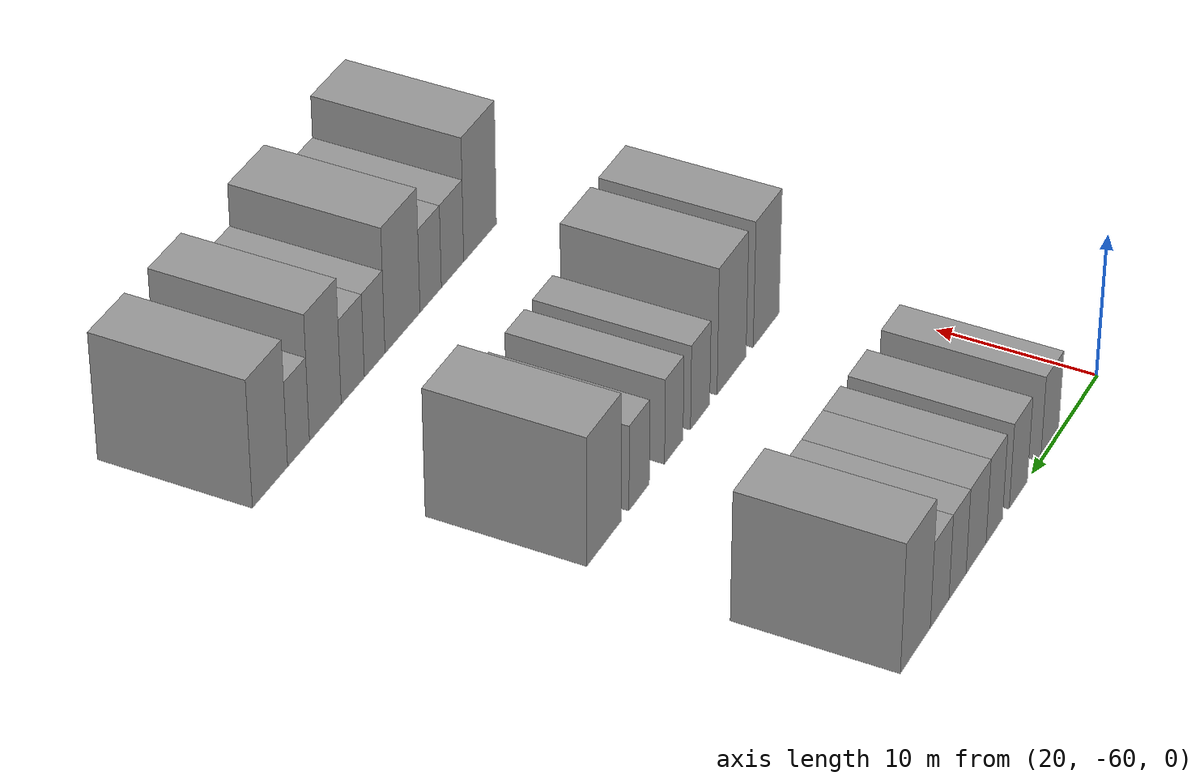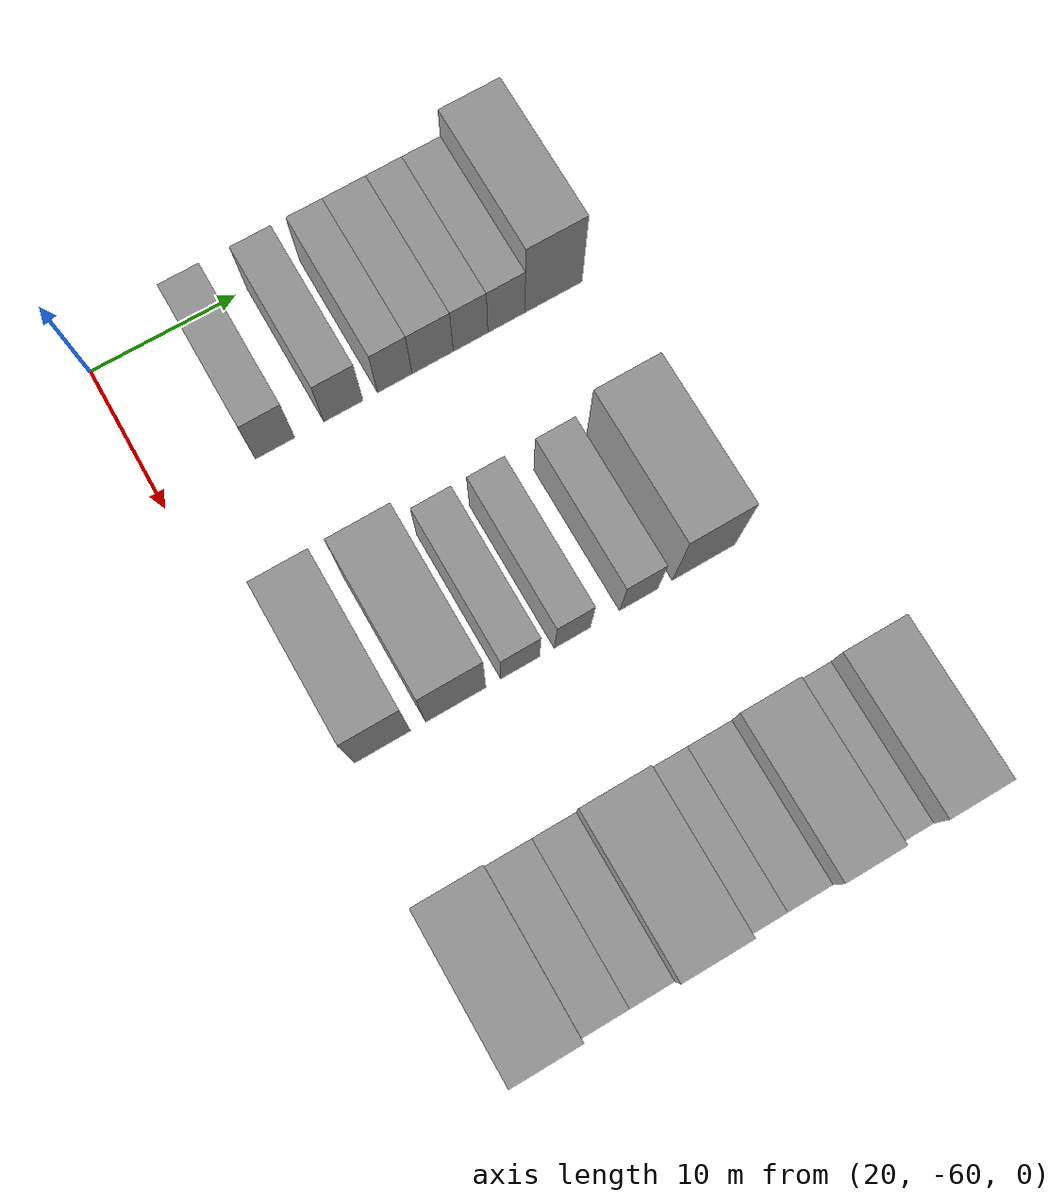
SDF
<sdf version="1.6">
 <world name="default">
  <model name="building_44">
   <static>1</static>
   <pose>25.0000 -52.5314 0 0.000000 0.000000 0.000000</pose>
   <link name="link">
    <pose>0 0 3.00 0 0 0</pose>
    <collision name="collision"><geometry><box><size>10.0000 2.6931 6.0000</size></box></geometry></collision>
    <visual name="visual">
     <cast_shadows>0</cast_shadows>
     <geometry><box><size>10.0000 2.6931 6.0000</size></box></geometry>
     <material>
      <script>
       <uri>model://grey_wall/materials/scripts</uri>
       <uri>model://grey_wall/materials/textures</uri>
       <name>vrc/grey_wall</name>
      </script>
     </material>
    </visual>
   </link>
  </model>
  <model name="building_45">
   <static>1</static>
   <pose>25.0000 -47.8277 0 0.000000 0.000000 0.000000</pose>
   <link name="link">
    <pose>0 0 3.00 0 0 0</pose>
    <collision name="collision"><geometry><box><size>10.0000 2.7142 6.0000</size></box></geometry></collision>
    <visual name="visual">
     <cast_shadows>0</cast_shadows>
     <geometry><box><size>10.0000 2.7142 6.0000</size></box></geometry>
     <material>
      <script>
       <uri>model://grey_wall/materials/scripts</uri>
       <uri>model://grey_wall/materials/textures</uri>
       <name>vrc/grey_wall</name>
      </script>
     </material>
    </visual>
   </link>
  </model>
  <model name="building_46">
   <static>1</static>
   <pose>25.0000 -44.2647 0 0.000000 0.000000 0.000000</pose>
   <link name="link">
    <pose>0 0 3.00 0 0 0</pose>
    <collision name="collision"><geometry><box><size>10.0000 2.4117 6.0000</size></box></geometry></collision>
    <visual name="visual">
     <cast_shadows>0</cast_shadows>
     <geometry><box><size>10.0000 2.4117 6.0000</size></box></geometry>
     <material>
      <script>
       <uri>model://grey_wall/materials/scripts</uri>
       <uri>model://grey_wall/materials/textures</uri>
       <name>vrc/grey_wall</name>
      </script>
     </material>
    </visual>
   </link>
  </model>
  <model name="building_47">
   <static>1</static>
   <pose>25.0000 -41.6088 0 0.000000 0.000000 0.000000</pose>
   <link name="link">
    <pose>0 0 3.00 0 0 0</pose>
    <collision name="collision"><geometry><box><size>10.0000 2.9002 6.0000</size></box></geometry></collision>
    <visual name="visual">
     <cast_shadows>0</cast_shadows>
     <geometry><box><size>10.0000 2.9002 6.0000</size></box></geometry>
     <material>
      <script>
       <uri>model://grey_wall/materials/scripts</uri>
       <uri>model://grey_wall/materials/textures</uri>
       <name>vrc/grey_wall</name>
      </script>
     </material>
    </visual>
   </link>
  </model>
  <model name="building_48">
   <static>1</static>
   <pose>25.0000 -38.9395 0 0.000000 0.000000 0.000000</pose>
   <link name="link">
    <pose>0 0 3.00 0 0 0</pose>
    <collision name="collision"><geometry><box><size>10.0000 2.4383 6.0000</size></box></geometry></collision>
    <visual name="visual">
     <cast_shadows>0</cast_shadows>
     <geometry><box><size>10.0000 2.4383 6.0000</size></box></geometry>
     <material>
      <script>
       <uri>model://grey_wall/materials/scripts</uri>
       <uri>model://grey_wall/materials/textures</uri>
       <name>vrc/grey_wall</name>
      </script>
     </material>
    </visual>
   </link>
  </model>
  <model name="building_49">
   <static>1</static>
   <pose>25.0000 -36.4089 0 0.000000 0.000000 0.000000</pose>
   <link name="link">
    <pose>0 0 3.00 0 0 0</pose>
    <collision name="collision"><geometry><box><size>10.0000 2.6229 6.0000</size></box></geometry></collision>
    <visual name="visual">
     <cast_shadows>0</cast_shadows>
     <geometry><box><size>10.0000 2.6229 6.0000</size></box></geometry>
     <material>
      <script>
       <uri>model://grey_wall/materials/scripts</uri>
       <uri>model://grey_wall/materials/textures</uri>
       <name>vrc/grey_wall</name>
      </script>
     </material>
    </visual>
   </link>
  </model>
  <model name="building_50">
   <static>1</static>
   <pose>25.0000 -33.0423 0 0.000000 0.000000 0.000000</pose>
   <link name="link">
    <pose>0 0 4.50 0 0 0</pose>
    <collision name="collision"><geometry><box><size>10.0000 4.1103 9.0000</size></box></geometry></collision>
    <visual name="visual">
     <cast_shadows>0</cast_shadows>
     <geometry><box><size>10.0000 4.1103 9.0000</size></box></geometry>
     <material>
      <script>
       <uri>model://grey_wall/materials/scripts</uri>
       <uri>model://grey_wall/materials/textures</uri>
       <name>vrc/grey_wall</name>
      </script>
     </material>
    </visual>
   </link>
  </model>
  <model name="building_159">
   <static>1</static>
   <pose>44.0000 -55.6212 0 0.000000 0.000000 0.000000</pose>
   <link name="link">
    <pose>0 0 4.50 0 0 0</pose>
    <collision name="collision"><geometry><box><size>10.0000 3.6583 9.0000</size></box></geometry></collision>
    <visual name="visual">
     <cast_shadows>0</cast_shadows>
     <geometry><box><size>10.0000 3.6583 9.0000</size></box></geometry>
     <material>
      <script>
       <uri>model://grey_wall/materials/scripts</uri>
       <uri>model://grey_wall/materials/textures</uri>
       <name>vrc/grey_wall</name>
      </script>
     </material>
    </visual>
   </link>
  </model>
  <model name="building_160">
   <static>1</static>
   <pose>44.0000 -50.7853 0 0.000000 0.000000 0.000000</pose>
   <link name="link">
    <pose>0 0 4.50 0 0 0</pose>
    <collision name="collision"><geometry><box><size>10.0000 4.0134 9.0000</size></box></geometry></collision>
    <visual name="visual">
     <cast_shadows>0</cast_shadows>
     <geometry><box><size>10.0000 4.0134 9.0000</size></box></geometry>
     <material>
      <script>
       <uri>model://grey_wall/materials/scripts</uri>
       <uri>model://grey_wall/materials/textures</uri>
       <name>vrc/grey_wall</name>
      </script>
     </material>
    </visual>
   </link>
  </model>
  <model name="building_161">
   <static>1</static>
   <pose>44.0000 -46.4750 0 0.000000 0.000000 0.000000</pose>
   <link name="link">
    <pose>0 0 3.00 0 0 0</pose>
    <collision name="collision"><geometry><box><size>10.0000 2.6072 6.0000</size></box></geometry></collision>
    <visual name="visual">
     <cast_shadows>0</cast_shadows>
     <geometry><box><size>10.0000 2.6072 6.0000</size></box></geometry>
     <material>
      <script>
       <uri>model://grey_wall/materials/scripts</uri>
       <uri>model://grey_wall/materials/textures</uri>
       <name>vrc/grey_wall</name>
      </script>
     </material>
    </visual>
   </link>
  </model>
  <model name="building_162">
   <static>1</static>
   <pose>44.0000 -42.9422 0 0.000000 0.000000 0.000000</pose>
   <link name="link">
    <pose>0 0 3.00 0 0 0</pose>
    <collision name="collision"><geometry><box><size>10.0000 2.4585 6.0000</size></box></geometry></collision>
    <visual name="visual">
     <cast_shadows>0</cast_shadows>
     <geometry><box><size>10.0000 2.4585 6.0000</size></box></geometry>
     <material>
      <script>
       <uri>model://grey_wall/materials/scripts</uri>
       <uri>model://grey_wall/materials/textures</uri>
       <name>vrc/grey_wall</name>
      </script>
     </material>
    </visual>
   </link>
  </model>
  <model name="building_163">
   <static>1</static>
   <pose>44.0000 -38.3924 0 0.000000 0.000000 0.000000</pose>
   <link name="link">
    <pose>0 0 3.00 0 0 0</pose>
    <collision name="collision"><geometry><box><size>10.0000 2.6411 6.0000</size></box></geometry></collision>
    <visual name="visual">
     <cast_shadows>0</cast_shadows>
     <geometry><box><size>10.0000 2.6411 6.0000</size></box></geometry>
     <material>
      <script>
       <uri>model://grey_wall/materials/scripts</uri>
       <uri>model://grey_wall/materials/textures</uri>
       <name>vrc/grey_wall</name>
      </script>
     </material>
    </visual>
   </link>
  </model>
  <model name="building_164">
   <static>1</static>
   <pose>44.0000 -33.8953 0 0.000000 0.000000 0.000000</pose>
   <link name="link">
    <pose>0 0 4.50 0 0 0</pose>
    <collision name="collision"><geometry><box><size>10.0000 4.3532 9.0000</size></box></geometry></collision>
    <visual name="visual">
     <cast_shadows>0</cast_shadows>
     <geometry><box><size>10.0000 4.3532 9.0000</size></box></geometry>
     <material>
      <script>
       <uri>model://grey_wall/materials/scripts</uri>
       <uri>model://grey_wall/materials/textures</uri>
       <name>vrc/grey_wall</name>
      </script>
     </material>
    </visual>
   </link>
  </model>
  <model name="building_272">
   <static>1</static>
   <pose>63.0000 -56.0829 0 0.000000 0.000000 0.000000</pose>
   <link name="link">
    <pose>0 0 4.50 0 0 0</pose>
    <collision name="collision"><geometry><box><size>10.0000 4.3126 9.0000</size></box></geometry></collision>
    <visual name="visual">
     <cast_shadows>0</cast_shadows>
     <geometry><box><size>10.0000 4.3126 9.0000</size></box></geometry>
     <material>
      <script>
       <uri>model://grey_wall/materials/scripts</uri>
       <uri>model://grey_wall/materials/textures</uri>
       <name>vrc/grey_wall</name>
      </script>
     </material>
    </visual>
   </link>
  </model>
  <model name="building_273">
   <static>1</static>
   <pose>63.0000 -52.4817 0 0.000000 0.000000 0.000000</pose>
   <link name="link">
    <pose>0 0 3.00 0 0 0</pose>
    <collision name="collision"><geometry><box><size>10.0000 2.8898 6.0000</size></box></geometry></collision>
    <visual name="visual">
     <cast_shadows>0</cast_shadows>
     <geometry><box><size>10.0000 2.8898 6.0000</size></box></geometry>
     <material>
      <script>
       <uri>model://grey_wall/materials/scripts</uri>
       <uri>model://grey_wall/materials/textures</uri>
       <name>vrc/grey_wall</name>
      </script>
     </material>
    </visual>
   </link>
  </model>
  <model name="building_274">
   <static>1</static>
   <pose>63.0000 -49.6726 0 0.000000 0.000000 0.000000</pose>
   <link name="link">
    <pose>0 0 3.00 0 0 0</pose>
    <collision name="collision"><geometry><box><size>10.0000 2.7284 6.0000</size></box></geometry></collision>
    <visual name="visual">
     <cast_shadows>0</cast_shadows>
     <geometry><box><size>10.0000 2.7284 6.0000</size></box></geometry>
     <material>
      <script>
       <uri>model://grey_wall/materials/scripts</uri>
       <uri>model://grey_wall/materials/textures</uri>
       <name>vrc/grey_wall</name>
      </script>
     </material>
    </visual>
   </link>
  </model>
  <model name="building_275">
   <static>1</static>
   <pose>63.0000 -46.1121 0 0.000000 0.000000 0.000000</pose>
   <link name="link">
    <pose>0 0 4.50 0 0 0</pose>
    <collision name="collision"><geometry><box><size>10.0000 4.3927 9.0000</size></box></geometry></collision>
    <visual name="visual">
     <cast_shadows>0</cast_shadows>
     <geometry><box><size>10.0000 4.3927 9.0000</size></box></geometry>
     <material>
      <script>
       <uri>model://grey_wall/materials/scripts</uri>
       <uri>model://grey_wall/materials/textures</uri>
       <name>vrc/grey_wall</name>
      </script>
     </material>
    </visual>
   </link>
  </model>
  <model name="building_276">
   <static>1</static>
   <pose>63.0000 -42.6467 0 0.000000 0.000000 0.000000</pose>
   <link name="link">
    <pose>0 0 3.00 0 0 0</pose>
    <collision name="collision"><geometry><box><size>10.0000 2.5381 6.0000</size></box></geometry></collision>
    <visual name="visual">
     <cast_shadows>0</cast_shadows>
     <geometry><box><size>10.0000 2.5381 6.0000</size></box></geometry>
     <material>
      <script>
       <uri>model://grey_wall/materials/scripts</uri>
       <uri>model://grey_wall/materials/textures</uri>
       <name>vrc/grey_wall</name>
      </script>
     </material>
    </visual>
   </link>
  </model>
  <model name="building_277">
   <static>1</static>
   <pose>63.0000 -39.9706 0 0.000000 0.000000 0.000000</pose>
   <link name="link">
    <pose>0 0 3.00 0 0 0</pose>
    <collision name="collision"><geometry><box><size>10.0000 2.8140 6.0000</size></box></geometry></collision>
    <visual name="visual">
     <cast_shadows>0</cast_shadows>
     <geometry><box><size>10.0000 2.8140 6.0000</size></box></geometry>
     <material>
      <script>
       <uri>model://grey_wall/materials/scripts</uri>
       <uri>model://grey_wall/materials/textures</uri>
       <name>vrc/grey_wall</name>
      </script>
     </material>
    </visual>
   </link>
  </model>
  <model name="building_278">
   <static>1</static>
   <pose>63.0000 -36.6678 0 0.000000 0.000000 0.000000</pose>
   <link name="link">
    <pose>0 0 4.50 0 0 0</pose>
    <collision name="collision"><geometry><box><size>10.0000 3.7916 9.0000</size></box></geometry></collision>
    <visual name="visual">
     <cast_shadows>0</cast_shadows>
     <geometry><box><size>10.0000 3.7916 9.0000</size></box></geometry>
     <material>
      <script>
       <uri>model://grey_wall/materials/scripts</uri>
       <uri>model://grey_wall/materials/textures</uri>
       <name>vrc/grey_wall</name>
      </script>
     </material>
    </visual>
   </link>
  </model>
  <model name="building_279">
   <static>1</static>
   <pose>63.0000 -33.4888 0 0.000000 0.000000 0.000000</pose>
   <link name="link">
    <pose>0 0 3.00 0 0 0</pose>
    <collision name="collision"><geometry><box><size>10.0000 2.5664 6.0000</size></box></geometry></collision>
    <visual name="visual">
     <cast_shadows>0</cast_shadows>
     <geometry><box><size>10.0000 2.5664 6.0000</size></box></geometry>
     <material>
      <script>
       <uri>model://grey_wall/materials/scripts</uri>
       <uri>model://grey_wall/materials/textures</uri>
       <name>vrc/grey_wall</name>
      </script>
     </material>
    </visual>
   </link>
  </model>
  <model name="building_280">
   <static>1</static>
   <pose>63.0000 -30.1717 0 0.000000 0.000000 0.000000</pose>
   <link name="link">
    <pose>0 0 4.50 0 0 0</pose>
    <collision name="collision"><geometry><box><size>10.0000 4.0678 9.0000</size></box></geometry></collision>
    <visual name="visual">
     <cast_shadows>0</cast_shadows>
     <geometry><box><size>10.0000 4.0678 9.0000</size></box></geometry>
     <material>
      <script>
       <uri>model://grey_wall/materials/scripts</uri>
       <uri>model://grey_wall/materials/textures</uri>
       <name>vrc/grey_wall</name>
      </script>
     </material>
    </visual>
   </link>
  </model>
 </world>
</sdf>
